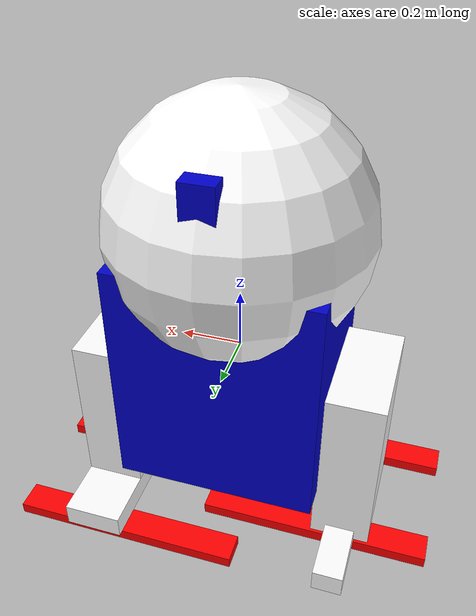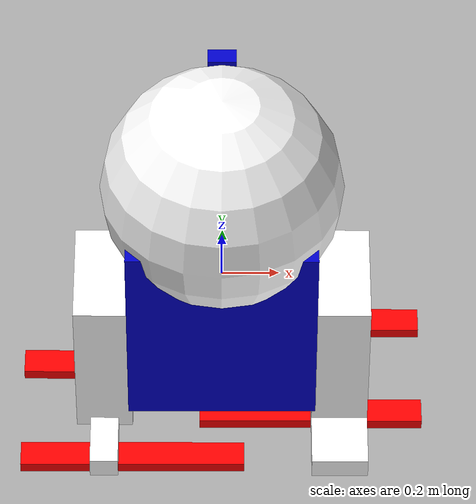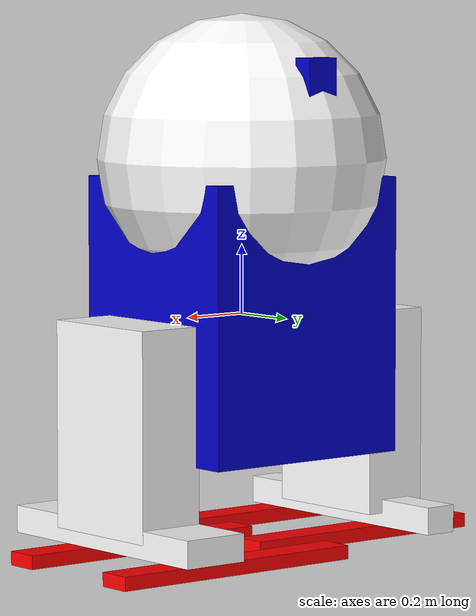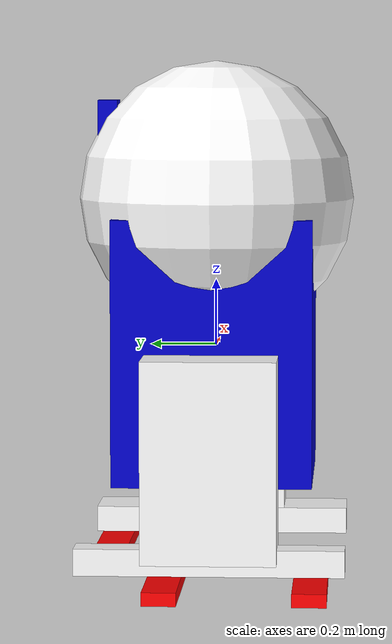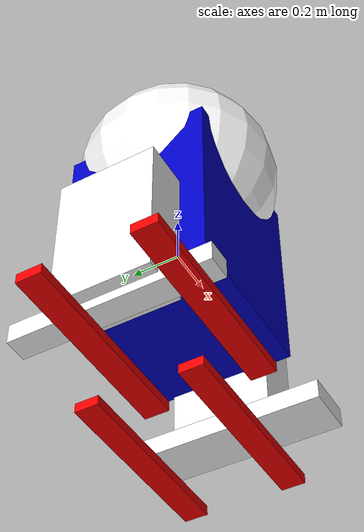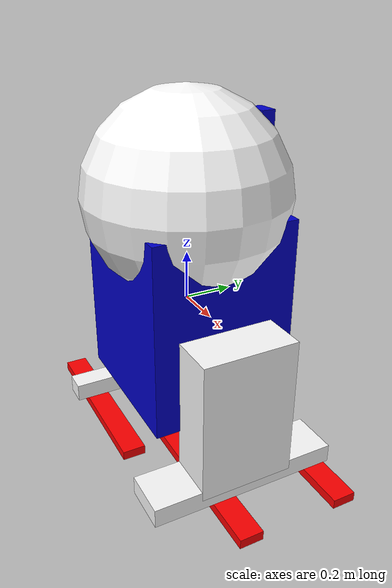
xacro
<?xml version="1.0"?>
<robot name="simple_legged_robot" xmlns:xacro="http://ros.org/wiki/xacro">

  <!-- Macro for simple_legged_robot body.  -->

  	<xacro:include filename="chassis.gazebo" />

	   <link name = "camera_head">
	     <visual>
	       <geometry>
	          <sphere radius="0.42"/>
	       </geometry>
	      <material name = "white">
	        <color rgba="1 1 1 1"/>
	      </material>
	     </visual>

	     <collision>
	     <geometry>
	       <cylinder length = "0.6" radius = "0.4"/>
	     </geometry>
	   </collision>

	   </link>

	   <joint name = "camera_head_joint" type="continuous">
	        <origin xyz="0 0 .45"/>
	        <axis xyz = "0 0 1"/>
	        <parent link="base_link" />
	        <child link="camera_head" />

	   </joint>

	   <link name = "camera_indicator">
	    <visual>
	      <geometry>
	        <box size = "0.1 0.2 0.06"/>
	      </geometry>

	      <origin xyz="0 0 0" rpy="1.57075 0 0" />
	      <material name = "blue">
	       <color rgba = "0 0 0.8 1"/>
	      </material>
	    </visual>
		<inertial>
			<mass value="10"/>
			<inertia ixx="0.4" ixy="0.0" ixz="0.0" iyy="0.4" iyz="0.0" izz="0.2"/>
		</inertial>

	   </link>

	   <joint name = "camera_indicator_joint" type = "fixed">
	    <origin xyz = "0 0.33 0.2"/>
	    <parent link = "camera_head"/>
	    <child link = "camera_indicator"/>
	   </joint>

	    <link name="base_link">

		  <inertial>
		      <mass value="10"/>
		          <inertia ixx="0.4" ixy="0.0" ixz="0.0" iyy="0.4" iyz="0.0" izz="0.2"/>
		  </inertial>

	    <visual>
                <geometry>
                  <box size = "0.66 0.6 0.8"/>
                </geometry>
	    	 <origin xyz="0.00 0.0 0.0" rpy="0 0 0" />

	    	  <material name="blue">
	              <color rgba="0 0 0.8 1.0"/>
	          </material>

	    </visual>

	   <collision>
	     <geometry>
	       <cylinder length = "0.6" radius = "0.4"/>
	     </geometry>
	   </collision>

	  </link>

	  <!-- Left part of the robot -->

	  <link name="left_link">

	    <visual>

                <geometry>
                   <box size = "0.6 0.4 0.2"/>

                </geometry>
                <origin xyz="0 0 -0.3" rpy="0 1.57075 0" />

	    	<material name="white">
	    	  <color rgba = "1 1 1 1"/>
	    	</material>
	    </visual>

	  </link>

	  <joint name = "left_link_joint" type = "continuous">
	     <origin xyz="0.42 0 0"/>
	    <parent link="base_link" />
	    <child link="left_link" />
	  </joint>

	  <link name = "left_foot">

	  <visual>

                <geometry>
                   <box size = "0.08 0.8 0.2"/>

                </geometry>
                <origin xyz="0 0 0" rpy="0 1.57075 0" />

	    	<material name="white">
	    	  <color rgba = "1 1 1 1"/>
	    	</material>
	    </visual>

	  </link>

	  <joint name = "left_foot_joint" type = "fixed">
	        <origin xyz="0 0 -0.6"/>
	        <parent link="left_link" />
	        <child link="left_foot" />

	  </joint>

	  <link name = "left_foot_toe_back">
	     <visual>
	       <geometry>
	         <box size = "0.8 0.04 0.1"/>

	       </geometry>
	       <origin xyz = "0 0 0" rpy = "1.57075 0 0"/>

	       <material name = "red">
	         <color rgba = "1 0 0 1"/>
	       </material>

	     </visual>
	  </link>

	  <joint name = "left_foot_toe_back_joint" type = "fixed">
	    <origin xyz = "-0.1 -0.1 -0.06"/>
	    <parent link = "left_foot"/>
	    <child  link = "left_foot_toe_back"/>
	  </joint>

	  <link name = "left_foot_toe_front">
	     <visual>
	       <geometry>
	         <box size = "0.8 0.04 0.1"/>

	       </geometry>
	       <origin xyz = "0 0 0" rpy = "1.57075 0 0"/>

	       <material name = "red">
	         <color rgba = "1 0 0 1"/>
	       </material>

	     </visual>

	     <collision>
	     <geometry>
	       <cylinder length = "0.2" radius = "0.1"/>
	     </geometry>
	   </collision>
	  </link>

	  <joint name = "left_foot_toe_front_joint" type = "fixed">
	    <origin xyz = "-0.1 0.33 -0.06"/>
	    <parent link = "left_foot"/>
	    <child  link = "left_foot_toe_front"/>
	  </joint>

	  <!-- Right part of the robot -->
	  <link name="right_link">

	    <visual>

                <geometry>
                   <box size = "0.6 0.4 0.2"/>

                </geometry>
                <origin xyz="0 0 -0.3" rpy="0 1.57075 0" />

	    	<material name="white">
	    	  <color rgba = "1 1 1 1"/>
	    	</material>
	    </visual>
	   </link>

	  <joint name = "right_link_joint" type = "continuous">
	     <origin xyz="-0.42 0 0"/>
	    <parent link="base_link" />
	    <child link="right_link" />
	  </joint>

	  <link name = "right_foot">

	  <visual>

                <geometry>
                   <box size = "0.08 0.8 0.1"/>

                </geometry>
                <origin xyz="0 0 0" rpy="0 1.57075 0" />

	    	<material name="white">
	    	  <color rgba = "1 1 1 1"/>
	    	</material>
	    </visual>

	  </link>

	  <joint name = "right_foot_joint" type = "fixed">
	        <origin xyz="0 0 -0.6"/>
	        <parent link="right_link" />
	        <child link="right_foot" />

	  </joint>

	  	  <link name = "right_foot_toe_back">
	     <visual>
	       <geometry>
	         <box size = "0.8 0.04 0.1"/>

	       </geometry>
	       <origin xyz = "0 0 0" rpy = "1.57075 0 0"/>

	      <material name = "red">
	         <color rgba = "1 0 0 1"/>
	       </material>

	     </visual>
	  </link>

	  <joint name = "right_foot_toe_back_joint" type = "fixed">
	    <origin xyz = "0.1 -0.3 -0.06"/>
	    <parent link = "right_foot"/>
	    <child  link = "right_foot_toe_back"/>
	  </joint>

	  <link name = "right_foot_toe_front">
	     <visual>
	       <geometry>
	         <box size = "0.8 0.04 0.1"/>

	       </geometry>
	       <origin xyz = "0 0 0" rpy = "1.57075 0 0"/>

	       <material name = "red">
	         <color rgba = "1 0 0 1"/>
	       </material>

	     </visual>
	  </link>

	  <joint name = "right_foot_toe_front_joint" type = "fixed">
	    <origin xyz = "0.1 0.13 -0.06"/>
	    <parent link = "right_foot"/>
	    <child  link = "right_foot_toe_front"/>
	  </joint>

</robot>
